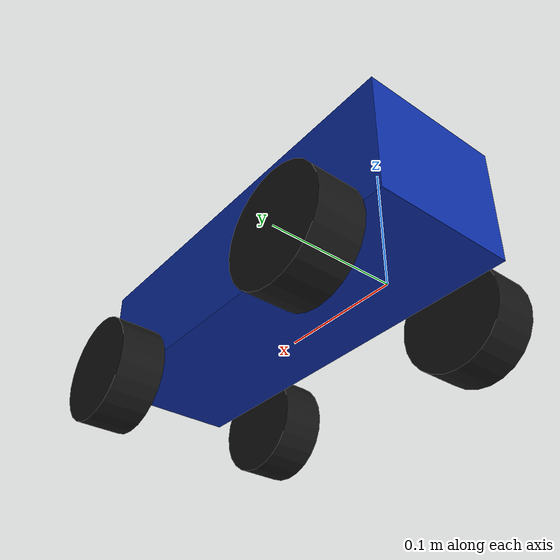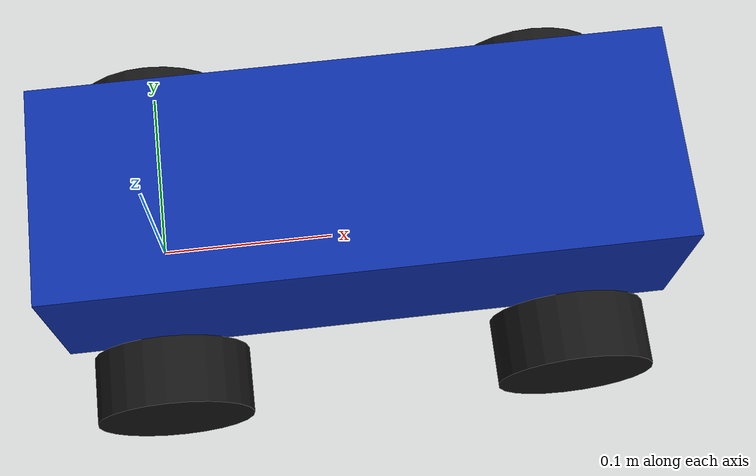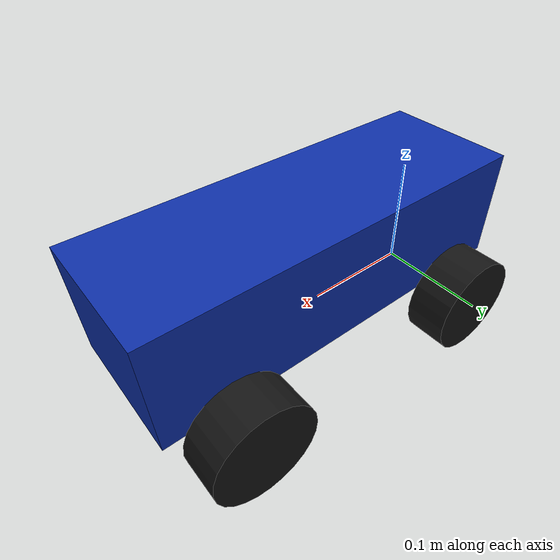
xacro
<?xml version="1.0"?>
<robot xmlns:xacro="http://www.ros.org/wiki/xacro" name="uamc">
  <xacro:property name="overall_length" value="0.345"/>
  <xacro:property name="overall_width" value="0.205"/>
  <xacro:property name="overall_height" value="0.160"/>
  <xacro:property name="wheelbase" value="0.232"/>
  <xacro:property name="wheel_track" value="0.165"/>
  <xacro:property name="tire_diameter" value="0.090"/>
  <xacro:property name="tire_width" value="0.038"/>
  <xacro:property name="wheel_radius" value="${tire_diameter / 2}"/>
  <xacro:property name="body_width" value="0.120"/>
  <xacro:property name="body_bottom" value="0.015"/>
  <xacro:property name="body_height" value="${overall_height - wheel_radius - body_bottom}"/>
  <xacro:property name="body_center_z" value="${body_bottom + body_height / 2}"/>
  <link name="base_link">
    <inertial><origin xyz="${wheelbase / 2} 0 0.04"/><mass value="2.0"/>
      <inertia ixx="0.008" ixy="0" ixz="0" iyy="0.024" iyz="0" izz="0.028"/></inertial>
    <visual><origin xyz="${wheelbase / 2} 0 ${body_center_z}"/><geometry><box size="${overall_length} ${body_width} ${body_height}"/></geometry><material name="body"><color rgba="0.05 0.18 0.65 1"/></material></visual>
    <collision><origin xyz="${wheelbase / 2} 0 ${body_center_z}"/><geometry><box size="${overall_length} ${body_width} ${body_height}"/></geometry></collision>
  </link>
  <xacro:macro name="wheel" params="name x y front">
    <xacro:if value="${front}">
      <link name="${name}_knuckle">
        <inertial><mass value="0.03"/><inertia ixx="0.00001" ixy="0" ixz="0" iyy="0.00001" iyz="0" izz="0.00001"/></inertial>
      </link>
      <joint name="${name}_steer_joint" type="revolute">
        <parent link="base_link"/><child link="${name}_knuckle"/><origin xyz="${x} ${y} 0"/>
        <axis xyz="0 0 1"/><limit lower="-0.65" upper="0.65" effort="10" velocity="5"/>
      </joint>
    </xacro:if>
    <link name="${name}_wheel">
      <inertial><mass value="0.10"/><inertia ixx="0.00006" ixy="0" ixz="0" iyy="0.00010" iyz="0" izz="0.00006"/></inertial>
      <visual><origin rpy="1.57079632679 0 0"/><geometry><cylinder radius="${wheel_radius}" length="${tire_width}"/></geometry><material name="tire"><color rgba="0.08 0.08 0.08 1"/></material></visual>
      <collision><origin rpy="1.57079632679 0 0"/><geometry><cylinder radius="${wheel_radius}" length="${tire_width}"/></geometry></collision>
    </link>
    <joint name="${name}_wheel_joint" type="continuous">
      <xacro:if value="${front}"><parent link="${name}_knuckle"/><origin xyz="0 0 0"/></xacro:if>
      <xacro:unless value="${front}"><parent link="base_link"/><origin xyz="${x} ${y} 0"/></xacro:unless>
      <child link="${name}_wheel"/><axis xyz="0 1 0"/><limit effort="10" velocity="30"/>
    </joint>
    <gazebo reference="${name}_wheel"><mu1>1.0</mu1><mu2>1.0</mu2></gazebo>
  </xacro:macro>
  <xacro:wheel name="front_left" x="${wheelbase}" y="${wheel_track / 2}" front="${True}"/>
  <xacro:wheel name="front_right" x="${wheelbase}" y="${-wheel_track / 2}" front="${True}"/>
  <xacro:wheel name="rear_left" x="0" y="${wheel_track / 2}" front="${False}"/>
  <xacro:wheel name="rear_right" x="0" y="${-wheel_track / 2}" front="${False}"/>
  <link name="camera_link"/><joint name="camera_mount" type="fixed"><parent link="base_link"/><child link="camera_link"/><origin xyz="0.20 0 0.17" rpy="0 0.30 0"/></joint>
  <link name="camera_optical_frame"/><joint name="camera_optical_joint" type="fixed"><parent link="camera_link"/><child link="camera_optical_frame"/><origin rpy="-1.57079632679 0 -1.57079632679"/></joint>
  <link name="laser_link"/><joint name="laser_mount" type="fixed"><parent link="base_link"/><child link="laser_link"/><origin xyz="0.23 0 0.13"/></joint>
  <link name="imu_link"/><joint name="imu_mount" type="fixed"><parent link="base_link"/><child link="imu_link"/><origin xyz="0.10 0 0.10"/></joint>
  <gazebo reference="camera_link">
    <sensor name="camera" type="camera"><always_on>true</always_on><update_rate>20</update_rate>
      <topic>/camera/image_raw</topic><gz_frame_id>camera_optical_frame</gz_frame_id>
      <camera><camera_info_topic>/camera/camera_info</camera_info_topic><horizontal_fov>1.5</horizontal_fov>
        <image><width>640</width><height>480</height><format>R8G8B8</format></image><clip><near>0.03</near><far>15</far></clip></camera>
    </sensor>
  </gazebo>
  <gazebo reference="laser_link">
    <sensor name="lidar" type="gpu_lidar"><always_on>true</always_on><update_rate>10</update_rate><topic>/scan</topic><gz_frame_id>laser_link</gz_frame_id>
      <lidar><scan><horizontal><samples>720</samples><resolution>1</resolution><min_angle>-3.14159265</min_angle><max_angle>3.14159265</max_angle></horizontal></scan><range><min>0.05</min><max>12</max><resolution>0.01</resolution></range></lidar>
    </sensor>
  </gazebo>
  <gazebo reference="imu_link">
    <sensor name="imu" type="imu"><always_on>true</always_on><update_rate>50</update_rate><topic>/imu/data</topic><gz_frame_id>imu_link</gz_frame_id></sensor>
  </gazebo>
  <gazebo>
    <plugin filename="gz-sim-ackermann-steering-system" name="gz::sim::systems::AckermannSteering">
      <left_joint>rear_left_wheel_joint</left_joint><right_joint>rear_right_wheel_joint</right_joint>
      <left_steering_joint>front_left_steer_joint</left_steering_joint><right_steering_joint>front_right_steer_joint</right_steering_joint>
      <wheel_separation>${wheel_track}</wheel_separation><kingpin_width>${wheel_track}</kingpin_width><wheel_base>${wheelbase}</wheel_base><wheel_radius>${wheel_radius}</wheel_radius><steering_limit>0.5</steering_limit>
      <topic>/model/uamc/cmd_vel</topic><odom_topic>/odometry/wheel</odom_topic><frame_id>odom</frame_id><child_frame_id>base_link</child_frame_id>
      <min_velocity>-0.1</min_velocity><max_velocity>0.3</max_velocity><min_acceleration>-1.0</min_acceleration><max_acceleration>1.0</max_acceleration>
    </plugin>
    <plugin filename="gz-sim-joint-state-publisher-system" name="gz::sim::systems::JointStatePublisher"><topic>/joint_states</topic></plugin>
  </gazebo>
</robot>
